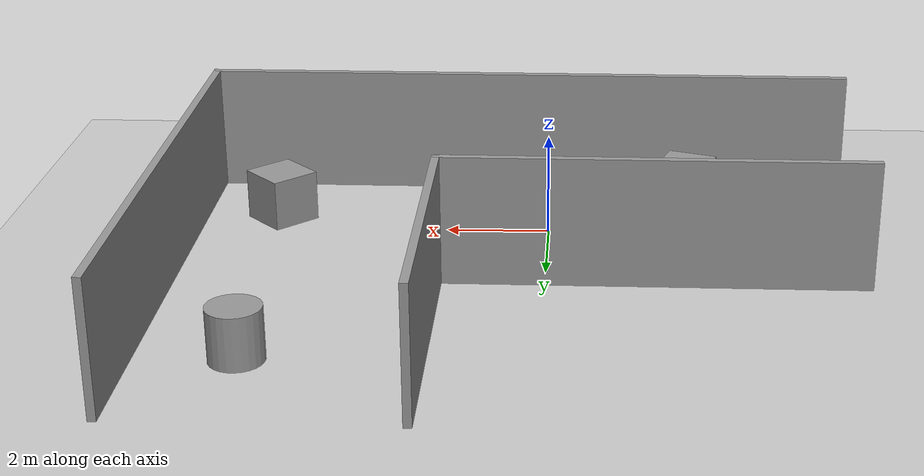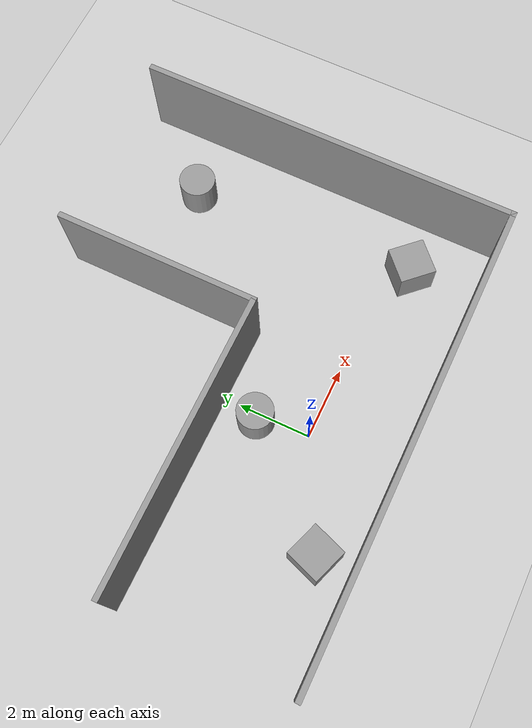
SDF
<sdf version="1.7">
 <world name="default">
  <light name="sun" type="directional">
   <pose>0 0 10 0 -0 0</pose>
   <diffuse>0.8 0.8 0.8 1</diffuse>
   <specular>0.2 0.2 0.2 1</specular>
   <attenuation>
    <range>1000</range>
    <constant>0.9</constant>
    <linear>0.01</linear>
    <quadratic>0.001</quadratic>
   </attenuation>
   <direction>-0.5 0.1 -0.9</direction>
   <spot><inner_angle>0</inner_angle><outer_angle>0</outer_angle><falloff>0</falloff></spot>
  </light>
  <model name="ground_plane">
   <static>1</static>
   <link name="link">
    <collision name="collision">
     <geometry><plane><normal>0 0 1</normal><size>100 100</size></plane></geometry>
     <surface><friction><ode><mu>100</mu><mu2>50</mu2></ode></friction></surface>
    </collision>
    <visual name="visual">
     <cast_shadows>0</cast_shadows>
     <geometry><plane><normal>0 0 1</normal><size>100 100</size></plane></geometry>
     <material>
      <ambient>0.8 0.8 0.8 1</ambient>
      <diffuse>0.8 0.8 0.8 1</diffuse>
      <specular>0 0 0 0</specular>
      <emissive>0 0 0 1</emissive>
     </material>
    </visual>
   </link>
  </model>
  <gravity>0 0 -9.8</gravity>
  <magnetic_field>6e-06 2.3e-05 -4.2e-05</magnetic_field>
  <atmosphere type="adiabatic"/>
  <physics type="ode">
   <max_step_size>0.001</max_step_size>
   <real_time_factor>1</real_time_factor>
   <real_time_update_rate>1000</real_time_update_rate>
  </physics>
  <scene><ambient>0.4 0.4 0.4 1</ambient><background>0.7 0.7 0.7 1</background><shadows>1</shadows></scene>
  <audio><device>default</device></audio>
  <spherical_coordinates>
   <surface_model>EARTH_WGS84</surface_model>
   <latitude_deg>0</latitude_deg>
   <longitude_deg>0</longitude_deg>
   <elevation>0</elevation>
   <heading_deg>0</heading_deg>
  </spherical_coordinates>
  <model name="unit_box">
   <pose>-2.78276 -1.46514 0.499999 5e-06 -3e-06 -0.341632</pose>
   <link name="link">
    <inertial>
     <mass>1</mass>
     <inertia>
      <ixx>0.166667</ixx>
      <ixy>0</ixy>
      <ixz>0</ixz>
      <iyy>0.166667</iyy>
      <iyz>0</iyz>
      <izz>0.166667</izz>
     </inertia>
    </inertial>
    <collision name="collision"><geometry><box><size>1 1 1</size></box></geometry></collision>
    <visual name="visual">
     <geometry><box><size>1 1 1</size></box></geometry>
     <material>
      <script><name>Gazebo/Grey</name><uri>file://media/materials/scripts/gazebo.material</uri></script>
     </material>
    </visual>
   </link>
  </model>
  <model name="unit_cylinder">
   <pose>-0.203859 1.43881 0.499997 3e-06 -4e-06 0.099701</pose>
   <link name="link">
    <inertial>
     <mass>1</mass>
     <inertia><ixx>0.145833</ixx><ixy>0</ixy><ixz>0</ixz><iyy>0.145833</iyy><iyz>0</iyz><izz>0.125</izz></inertia>
    </inertial>
    <collision name="collision">
     <geometry><cylinder><radius>0.5</radius><length>1</length></cylinder></geometry>
    </collision>
    <visual name="visual">
     <geometry><cylinder><radius>0.5</radius><length>1</length></cylinder></geometry>
     <material>
      <script><name>Gazebo/Grey</name><uri>file://media/materials/scripts/gazebo.material</uri></script>
     </material>
    </visual>
   </link>
  </model>
  <model name="unit_cylinder_0">
   <pose>5.12878 5.83457 0.499999 0 -0 0.113795</pose>
   <link name="link">
    <inertial>
     <mass>1</mass>
     <inertia><ixx>0.145833</ixx><ixy>0</ixy><ixz>0</ixz><iyy>0.145833</iyy><iyz>0</iyz><izz>0.125</izz></inertia>
    </inertial>
    <collision name="collision">
     <geometry><cylinder><radius>0.5</radius><length>0.999999</length></cylinder></geometry>
    </collision>
    <visual name="visual">
     <geometry><cylinder><radius>0.5</radius><length>0.999999</length></cylinder></geometry>
     <material>
      <script><name>Gazebo/Grey</name><uri>file://media/materials/scripts/gazebo.material</uri></script>
     </material>
    </visual>
   </link>
  </model>
  <model name="unit_box_2">
   <pose>5.40154 -0.551725 0.5 0 -0 -0.807179</pose>
   <link name="link">
    <inertial>
     <mass>1</mass>
     <inertia>
      <ixx>0.166667</ixx>
      <ixy>0</ixy>
      <ixz>0</ixz>
      <iyy>0.166667</iyy>
      <iyz>0</iyz>
      <izz>0.166667</izz>
     </inertia>
    </inertial>
    <collision name="collision"><geometry><box><size>1 1 1</size></box></geometry></collision>
    <visual name="visual">
     <geometry><box><size>1 1 1</size></box></geometry>
     <material>
      <script><name>Gazebo/Grey</name><uri>file://media/materials/scripts/gazebo.material</uri></script>
     </material>
    </visual>
   </link>
  </model>
  <model name="warehouse_hallway">
   <pose>0.5 2.75 0 0 -0 0</pose>
   <link name="Wall_0">
    <collision name="Wall_0_Collision">
     <geometry><box><size>13.15 0.15 2.5</size></box></geometry>
     <pose>0 0 1.25 0 -0 0</pose>
    </collision>
    <visual name="Wall_0_Visual">
     <pose>0 0 1.25 0 -0 0</pose>
     <geometry><box><size>13.15 0.15 2.5</size></box></geometry>
     <material>
      <script><uri>file://media/materials/scripts/gazebo.material</uri><name>Gazebo/Grey</name></script>
     </material>
     <meta><layer>0</layer></meta>
    </visual>
    <pose>-0 -5.25 0 0 -0 3.14159</pose>
   </link>
   <link name="Wall_3">
    <collision name="Wall_3_Collision">
     <geometry><box><size>8.15 0.15 2.5</size></box></geometry>
     <pose>0 0 1.25 0 -0 0</pose>
    </collision>
    <visual name="Wall_3_Visual">
     <pose>0 0 1.25 0 -0 0</pose>
     <geometry><box><size>8.15 0.15 2.5</size></box></geometry>
     <material>
      <script><uri>file://media/materials/scripts/gazebo.material</uri><name>Gazebo/Grey</name></script>
     </material>
     <meta><layer>0</layer></meta>
    </visual>
    <pose>-2.5 -0.25 0 0 -0 3.14159</pose>
   </link>
   <link name="Wall_6">
    <collision name="Wall_6_Collision">
     <geometry><box><size>10.65 0.15 2.5</size></box></geometry>
     <pose>0 0 1.25 0 -0 0</pose>
    </collision>
    <visual name="Wall_6_Visual">
     <pose>0 0 1.25 0 -0 0</pose>
     <geometry><box><size>10.65 0.15 2.5</size></box></geometry>
     <material>
      <script><uri>file://media/materials/scripts/gazebo.material</uri><name>Gazebo/Grey</name></script>
     </material>
     <meta><layer>0</layer></meta>
    </visual>
    <pose>6.5 -0 0 0 -0 1.5708</pose>
   </link>
   <link name="Wall_8">
    <collision name="Wall_8_Collision">
     <geometry><box><size>5.65 0.15 2.5</size></box></geometry>
     <pose>0 0 1.25 0 -0 0</pose>
    </collision>
    <visual name="Wall_8_Visual">
     <pose>0 0 1.25 0 -0 0</pose>
     <geometry><box><size>5.65 0.15 2.5</size></box></geometry>
     <material>
      <script><uri>file://media/materials/scripts/gazebo.material</uri><name>Gazebo/Grey</name></script>
     </material>
     <meta><layer>0</layer></meta>
    </visual>
    <pose>1.5 2.5 0 0 -0 1.5708</pose>
   </link>
   <static>1</static>
  </model>
 </world>
</sdf>
